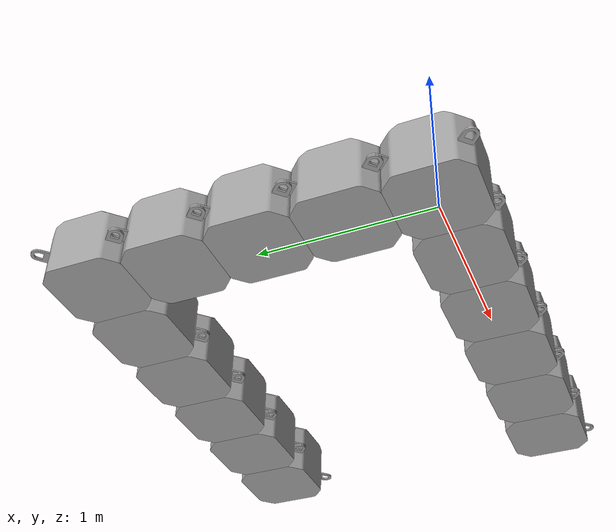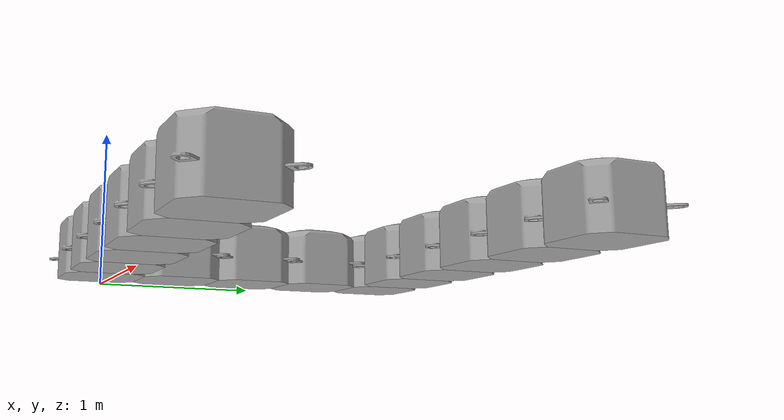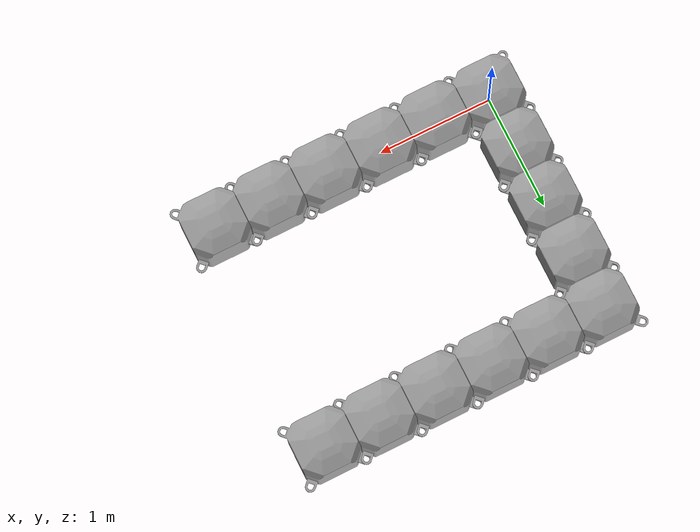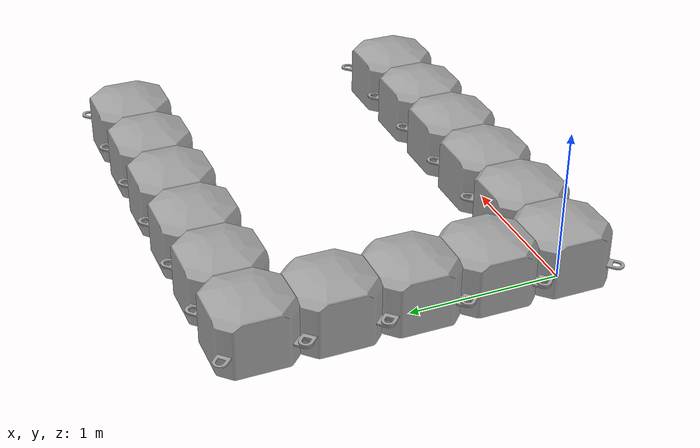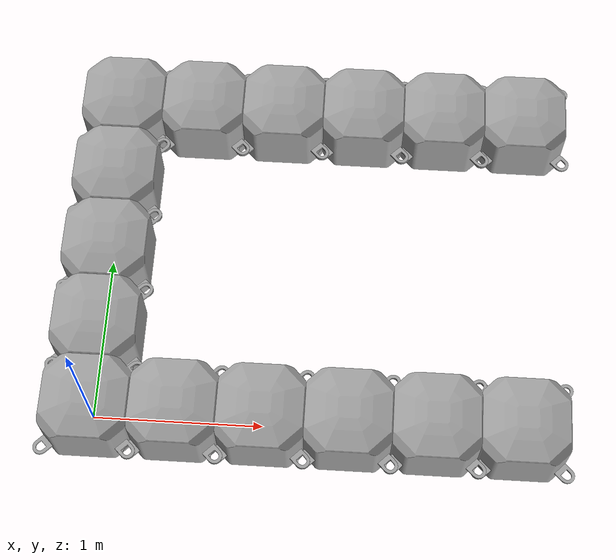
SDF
<?xml version="1.0"?>
<sdf version="1.5">
  <model name="docking">

    <static>true</static>

    <!-- Row -->
    <include>
      <name>dock_block_1</name>
      <pose>0 0 0.25 0 0 0</pose>
      <uri>model://dock_block</uri>
    </include>
    <include>
      <name>dock_block_2</name>
      <pose>0 0.5 0.25 0 0 0</pose>
      <uri>model://dock_block</uri>
    </include>
    <include>
      <name>dock_block_3</name>
      <pose>0 1.0 0.25 0 0 0</pose>
      <uri>model://dock_block</uri>
    </include>
    <include>
      <name>dock_block_4</name>
      <pose>0 1.5 0.25 0 0 0</pose>
      <uri>model://dock_block</uri>
    </include>
    <include>
      <name>dock_block_5</name>
      <pose>0 2.0 0.25 0 0 0</pose>
      <uri>model://dock_block</uri>
    </include>

    <!-- Col -->
    <include>
      <name>dock_block_01</name>
      <pose>0.5 0 0.25 0 0 0</pose>
      <uri>model://dock_block</uri>
    </include>
    <include>
      <name>dock_block_02</name>
      <pose>1 0 0.25 0 0 0</pose>
      <uri>model://dock_block</uri>
    </include>
    <include>
      <name>dock_block_03</name>
      <pose>1.5 0 0.25 0 0 0</pose>
      <uri>model://dock_block</uri>
    </include>
    <include>
      <name>dock_block_04</name>
      <pose>2 0 0.25 0 0 0</pose>
      <uri>model://dock_block</uri>
    </include>
    <include>
      <name>dock_block_05</name>
      <pose>2.5 0 0.25 0 0 0</pose>
      <uri>model://dock_block</uri>
    </include>

    <!-- Col -->
    <include>
      <name>dock_block_51</name>
      <pose>0.5 2.0 0.25 0 0 0</pose>
      <uri>model://dock_block</uri>
    </include>
    <include>
      <name>dock_block_52</name>
      <pose>1 2.0 0.25 0 0 0</pose>
      <uri>model://dock_block</uri>
    </include>
    <include>
      <name>dock_block_53</name>
      <pose>1.5 2.0 0.25 0 0 0</pose>
      <uri>model://dock_block</uri>
    </include>
    <include>
      <name>dock_block_54</name>
      <pose>2 2.0 0.25 0 0 0</pose>
      <uri>model://dock_block</uri>
    </include>
    <include>
      <name>dock_block_55</name>
      <pose>2.5 2.0 0.25 0 0 0</pose>
      <uri>model://dock_block</uri>
    </include>

  </model>
</sdf>

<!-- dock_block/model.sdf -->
<sdf version="1.5">
  <model name="dock_block">
    <static>false</static>
    <link name="link">
       <velocity_decay>
        <linear>0.001</linear>
        <angular>0.001</angular>
      </velocity_decay>
      <inertial>
        <pose>0 0 0 0 0 0</pose>
        <mass>10</mass>
        <inertia>
          <ixx>0.3417</ixx>
          <ixy>0</ixy>
          <ixz>0</ixz>
          <iyy>0.3417</iyy>
          <iyz>0</iyz>
          <izz>0.4167</izz>
        </inertia>
      </inertial>
      <collision name="collision">
        <pose>0 0 0 0 0 0</pose>
        <geometry>
          <box>
            <size>0.5 0.5 0.4</size>
          </box>
        </geometry>
      </collision>
      <visual name="visual">
        <pose> 0 0 0.2 0 0 0 </pose>
        <geometry>
          <mesh>
            <uri>file://dock_block/mesh/dock_block.dae</uri>
          </mesh>
        </geometry>
      </visual>
    </link>
    <plugin name="BuoyancyPlugin" filename="libbuoyancy_gazebo_plugin.so">
      <wave_model>ocean_waves</wave_model>
      <fluid_density>1000</fluid_density>
      <fluid_level>0</fluid_level>
      <linear_drag>1000.0</linear_drag>
      <angular_drag>200.0</angular_drag>
      <buoyancy name="buoyancy_base">
        <link_name>link</link_name>
      	<pose>0 0 -0.2 0 0 0</pose>
        <geometry>
          <sphere>
	    <radius>0.28794119114848615</radius>
	  </sphere>
        </geometry>
      </buoyancy>
    </plugin>
  </model>
</sdf>
